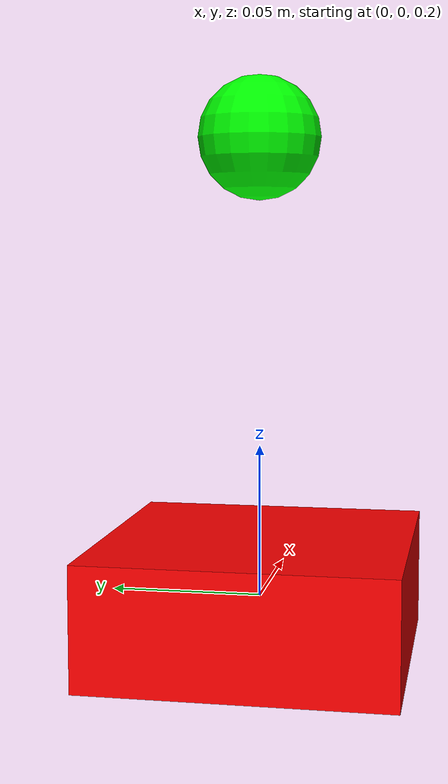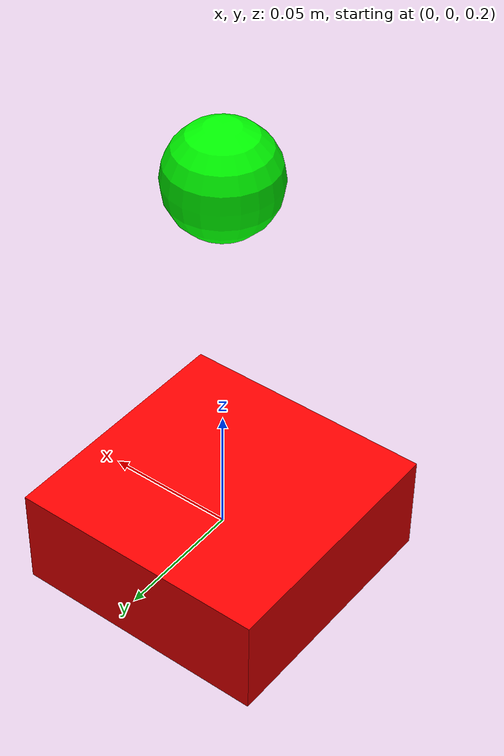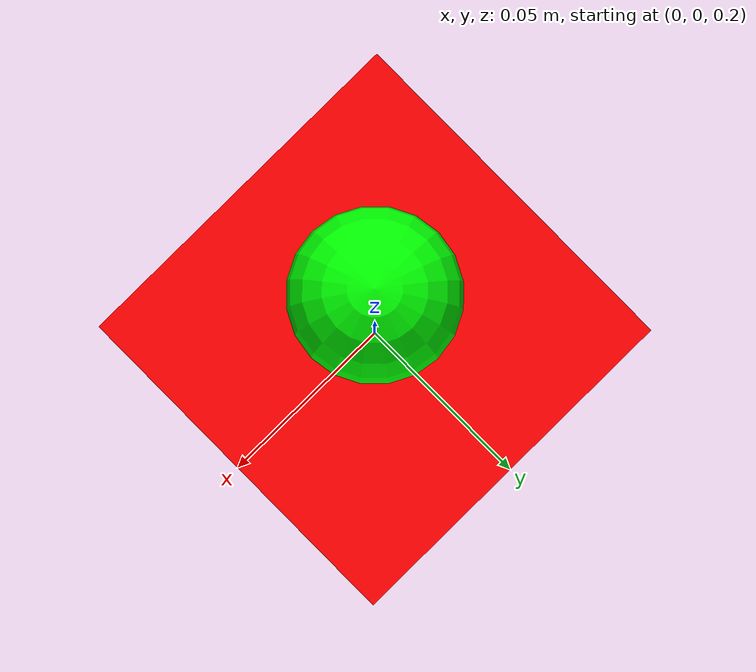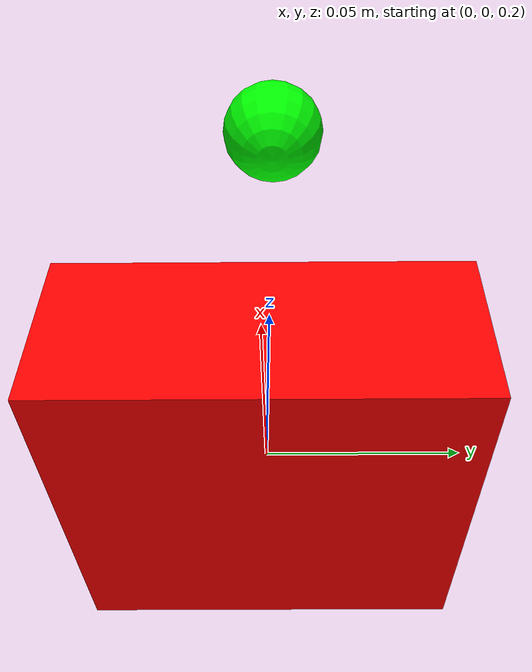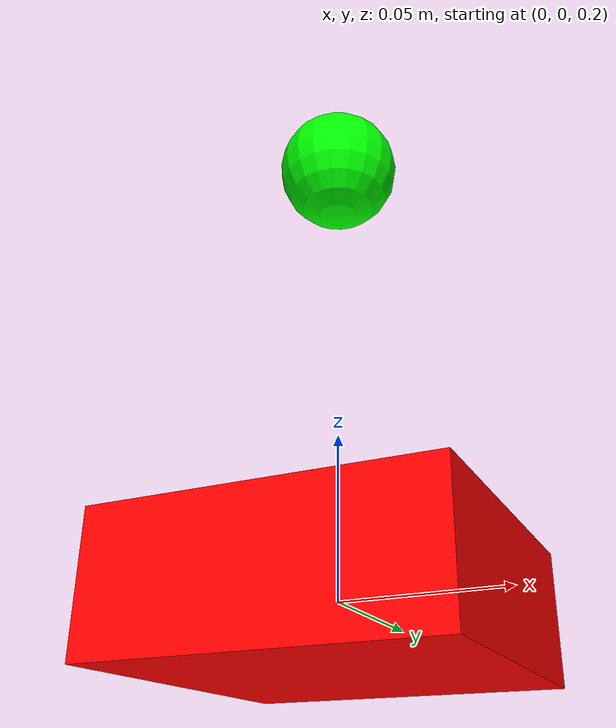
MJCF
<mujoco model="touch_grid_min">
  <extension>
    <plugin plugin="mujoco.sensor.touch_grid"/>
  </extension>

  <worldbody>
    <!-- 固定垫子：site 绕 X 轴转 180°，+z 朝上，感应从上方来的接触 -->
    <body name="pad" pos="0 0 0.2">
      <geom name="pad_geom" type="box" size="0.05 0.05 0.02" rgba="1 0 0 1"/>
      <site name="touch_site" size="0.01" euler="180 0 0"/>
    </body>

    <!-- 落体：从上方掉到垫子上产生接触 -->
    <body name="dropper" pos="0 0 0.35">
      <freejoint/>
      <geom name="dropper_geom" type="sphere" size="0.02" rgba="0 1 0 1" mass="1"/>
    </body>
  </worldbody>

  <sensor>
    <plugin name="touch_grid_pad" plugin="mujoco.sensor.touch_grid"
            objtype="site" objname="touch_site">
      <config key="nchannel" value="3"/>
      <config key="size" value="7 7"/>
      <config key="fov" value="45 45"/>
      <config key="gamma" value="0"/>
    </plugin>
  </sensor>
</mujoco>
